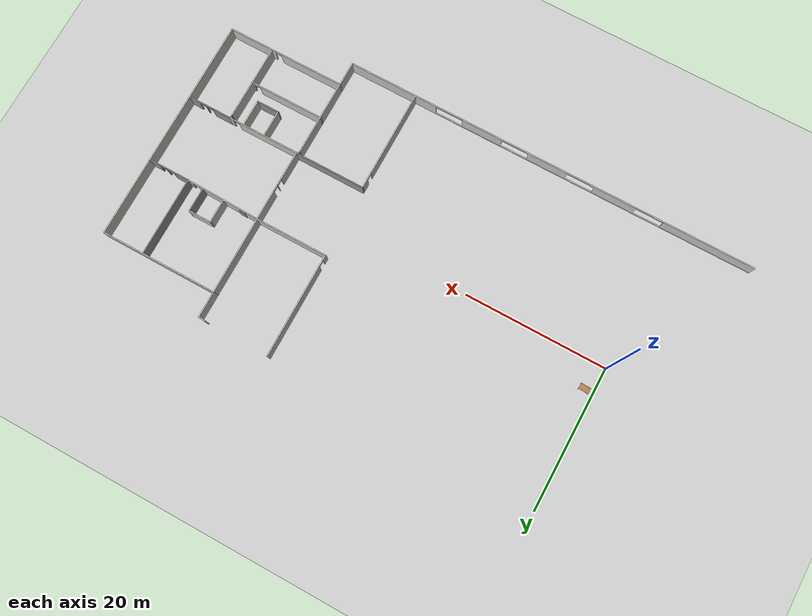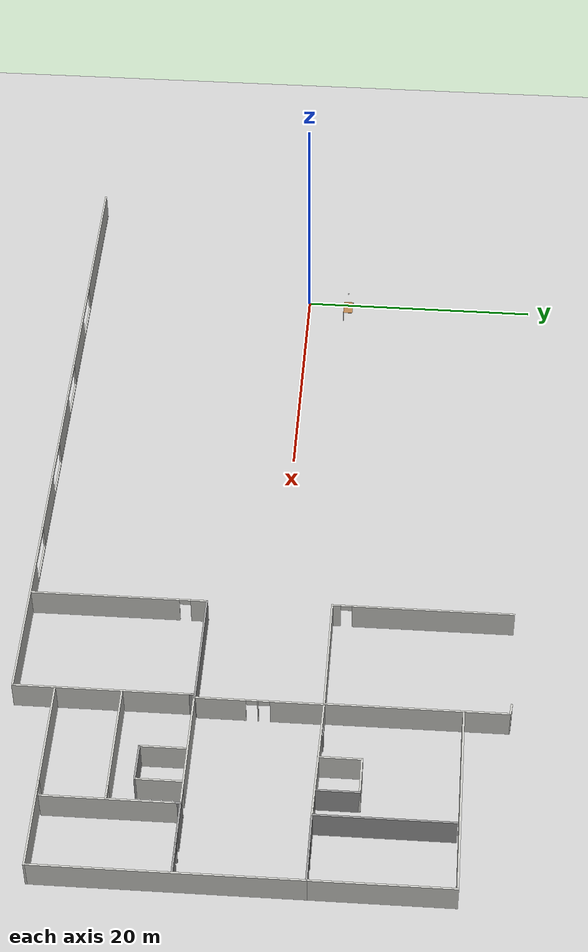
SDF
<sdf version="1.6">
 <world name="default">
  <model name="ground_plane">
   <static>1</static>
   <link name="link">
    <collision name="collision">
     <geometry><plane><normal>0 0 1</normal><size>100 100</size></plane></geometry>
     <surface><friction><ode><mu>100</mu><mu2>50</mu2></ode></friction></surface>
    </collision>
    <visual name="visual">
     <cast_shadows>0</cast_shadows>
     <geometry><plane><normal>0 0 1</normal><size>100 100</size></plane></geometry>
     <material>
      <script><uri>file://media/materials/scripts/gazebo.material</uri><name>Gazebo/Grey</name></script>
     </material>
    </visual>
   </link>
  </model>
  <model name="Erdgeschossen_labor">
   <pose>-4.29246 -0.487524 0 0 -0 0</pose>
   <link name="Door_37">
    <collision name="Door_37_Collision">
     <geometry><box><size>0.9 0.17 2</size></box></geometry>
     <pose>0 0 1 0 -0 0</pose>
    </collision>
    <visual name="Door_37_Visual">
     <pose>0 0 1 0 -0 0</pose>
     <geometry><box><size>0.9 0.17 2</size></box></geometry>
     <material>
      <script><uri>file://media/materials/scripts/gazebo.material</uri><name>Gazebo/Grey</name></script>
     </material>
    </visual>
    <pose>54.7211 4.95557 0 0 -0 0</pose>
   </link>
   <link name="Wall_10">
    <pose>65.825 4.6812 0 0 -0 3.14159</pose>
    <visual name="Wall_10_Visual_0">
     <pose>-2.15466 0 1.25 0 -0 0</pose>
     <geometry><box><size>1.69069 0.15 2.5</size></box></geometry>
     <material>
      <script><uri>file://media/materials/scripts/gazebo.material</uri><name>Gazebo/Grey</name></script>
      <ambient>1 1 1 1</ambient>
     </material>
    </visual>
    <collision name="Wall_10_Collision_0">
     <geometry><box><size>1.69069 0.15 2.5</size></box></geometry>
     <pose>-2.15466 0 1.25 0 -0 0</pose>
    </collision>
    <visual name="Wall_10_Visual_1">
     <pose>-0.324451 0 1.25 0 -0 0</pose>
     <geometry><box><size>0.169725 0.15 2.5</size></box></geometry>
     <material>
      <script><uri>file://media/materials/scripts/gazebo.material</uri><name>Gazebo/Grey</name></script>
      <ambient>1 1 1 1</ambient>
     </material>
    </visual>
    <collision name="Wall_10_Collision_1">
     <geometry><box><size>0.169725 0.15 2.5</size></box></geometry>
     <pose>-0.324451 0 1.25 0 -0 0</pose>
    </collision>
    <visual name="Wall_10_Visual_2">
     <pose>1.83021 0 1.25 0 -0 0</pose>
     <geometry><box><size>2.33959 0.15 2.5</size></box></geometry>
     <material>
      <script><uri>file://media/materials/scripts/gazebo.material</uri><name>Gazebo/Grey</name></script>
      <ambient>1 1 1 1</ambient>
     </material>
    </visual>
    <collision name="Wall_10_Collision_2">
     <geometry><box><size>2.33959 0.15 2.5</size></box></geometry>
     <pose>1.83021 0 1.25 0 -0 0</pose>
    </collision>
    <visual name="Wall_10_Visual_3">
     <pose>-0.859314 0 2.25 0 -0 0</pose>
     <geometry><box><size>0.9 0.15 0.5</size></box></geometry>
     <material>
      <script><uri>file://media/materials/scripts/gazebo.material</uri><name>Gazebo/Grey</name></script>
      <ambient>1 1 1 1</ambient>
     </material>
    </visual>
    <collision name="Wall_10_Collision_3">
     <geometry><box><size>0.9 0.15 0.5</size></box></geometry>
     <pose>-0.859314 0 2.25 0 -0 0</pose>
    </collision>
    <visual name="Wall_10_Visual_4">
     <pose>0.210411 0 2.25 0 -0 0</pose>
     <geometry><box><size>0.9 0.15 0.5</size></box></geometry>
     <material>
      <script><uri>file://media/materials/scripts/gazebo.material</uri><name>Gazebo/Grey</name></script>
      <ambient>1 1 1 1</ambient>
     </material>
    </visual>
    <collision name="Wall_10_Collision_4">
     <geometry><box><size>0.9 0.15 0.5</size></box></geometry>
     <pose>0.210411 0 2.25 0 -0 0</pose>
    </collision>
   </link>
   <link name="Wall_11">
    <collision name="Wall_11_Collision">
     <geometry><box><size>11 0.15 2.5</size></box></geometry>
     <pose>0 0 1.25 0 -0 0</pose>
    </collision>
    <visual name="Wall_11_Visual">
     <pose>0 0 1.25 0 -0 0</pose>
     <geometry><box><size>11 0.15 2.5</size></box></geometry>
     <material>
      <script><uri>file://media/materials/scripts/gazebo.material</uri><name>Gazebo/Grey</name></script>
      <ambient>1 1 1 1</ambient>
     </material>
    </visual>
    <pose>62.9 10.1062 0 0 -0 1.5708</pose>
   </link>
   <link name="Wall_13">
    <collision name="Wall_13_Collision">
     <geometry><box><size>1.04169 0.15 2.5</size></box></geometry>
     <pose>0 0 1.25 0 -0 0</pose>
    </collision>
    <visual name="Wall_13_Visual">
     <pose>0 0 1.25 0 -0 0</pose>
     <geometry><box><size>1.04169 0.15 2.5</size></box></geometry>
     <material>
      <script><uri>file://media/materials/scripts/gazebo.material</uri><name>Gazebo/CeilingTiled</name></script>
      <ambient>1 1 1 1</ambient>
     </material>
    </visual>
    <pose>51.956 19.4215 0 0 -0 3.05118</pose>
   </link>
   <link name="Wall_15">
    <collision name="Wall_15_Collision">
     <geometry><box><size>11 0.15 2.5</size></box></geometry>
     <pose>0 0 1.25 0 -0 0</pose>
    </collision>
    <visual name="Wall_15_Visual">
     <pose>0 0 1.25 0 -0 0</pose>
     <geometry><box><size>11 0.15 2.5</size></box></geometry>
     <material>
      <script><uri>file://media/materials/scripts/gazebo.material</uri><name>Gazebo/CeilingTiled</name></script>
      <ambient>1 1 1 1</ambient>
     </material>
    </visual>
    <pose>52.4 10.3562 0 0 0 -1.5708</pose>
   </link>
   <link name="Wall_16">
    <pose>57.65 4.8062 0 0 0 -0.023805</pose>
    <visual name="Wall_16_Visual_0">
     <pose>-0.791437 0 1.25 0 -0 0</pose>
     <geometry><box><size>9.0701 0.15 2.5</size></box></geometry>
     <material>
      <script><uri>file://media/materials/scripts/gazebo.material</uri><name>Gazebo/CeilingTiled</name></script>
      <ambient>1 1 1 1</ambient>
     </material>
    </visual>
    <collision name="Wall_16_Collision_0">
     <geometry><box><size>9.0701 0.15 2.5</size></box></geometry>
     <pose>-0.791437 0 1.25 0 -0 0</pose>
    </collision>
    <visual name="Wall_16_Visual_1">
     <pose>4.98505 0 1.25 0 -0 0</pose>
     <geometry><box><size>0.682875 0.15 2.5</size></box></geometry>
     <material>
      <script><uri>file://media/materials/scripts/gazebo.material</uri><name>Gazebo/CeilingTiled</name></script>
      <ambient>1 1 1 1</ambient>
     </material>
    </visual>
    <collision name="Wall_16_Collision_1">
     <geometry><box><size>0.682875 0.15 2.5</size></box></geometry>
     <pose>4.98505 0 1.25 0 -0 0</pose>
    </collision>
    <visual name="Wall_16_Visual_2">
     <pose>4.19361 0 2.25 0 -0 0</pose>
     <geometry><box><size>0.9 0.15 0.5</size></box></geometry>
     <material>
      <script><uri>file://media/materials/scripts/gazebo.material</uri><name>Gazebo/CeilingTiled</name></script>
      <ambient>1 1 1 1</ambient>
     </material>
    </visual>
    <collision name="Wall_16_Collision_2">
     <geometry><box><size>0.9 0.15 0.5</size></box></geometry>
     <pose>4.19361 0 2.25 0 -0 0</pose>
    </collision>
   </link>
   <link name="Wall_18">
    <collision name="Wall_18_Collision">
     <geometry><box><size>21 0.15 2.5</size></box></geometry>
     <pose>0 0 1.25 0 -0 0</pose>
    </collision>
    <visual name="Wall_18_Visual">
     <pose>0 0 1.25 0 -0 0</pose>
     <geometry><box><size>21 0.15 2.5</size></box></geometry>
     <material>
      <script><uri>file://media/materials/scripts/gazebo.material</uri><name>Gazebo/CeilingTiled</name></script>
      <ambient>1 1 1 1</ambient>
     </material>
    </visual>
    <pose>68.75 -5.7438 0 0 0 -1.5708</pose>
   </link>
   <link name="Wall_19">
    <pose>60.45 -16.1688 0 0 -0 3.14159</pose>
    <visual name="Wall_19_Visual_0">
     <pose>-4.96727 0 1.25 0 -0 0</pose>
     <geometry><box><size>6.81547 0.15 2.5</size></box></geometry>
     <material>
      <script><uri>file://media/materials/scripts/gazebo.material</uri><name>Gazebo/CeilingTiled</name></script>
      <ambient>1 1 1 1</ambient>
     </material>
    </visual>
    <collision name="Wall_19_Collision_0">
     <geometry><box><size>6.81547 0.15 2.5</size></box></geometry>
     <pose>-4.96727 0 1.25 0 -0 0</pose>
    </collision>
    <visual name="Wall_19_Visual_1">
     <pose>3.85773 0 1.25 0 -0 0</pose>
     <geometry><box><size>9.03453 0.15 2.5</size></box></geometry>
     <material>
      <script><uri>file://media/materials/scripts/gazebo.material</uri><name>Gazebo/CeilingTiled</name></script>
      <ambient>1 1 1 1</ambient>
     </material>
    </visual>
    <collision name="Wall_19_Collision_1">
     <geometry><box><size>9.03453 0.15 2.5</size></box></geometry>
     <pose>3.85773 0 1.25 0 -0 0</pose>
    </collision>
    <visual name="Wall_19_Visual_2">
     <pose>-1.10953 0 2.25 0 -0 0</pose>
     <geometry><box><size>0.9 0.15 0.5</size></box></geometry>
     <material>
      <script><uri>file://media/materials/scripts/gazebo.material</uri><name>Gazebo/CeilingTiled</name></script>
      <ambient>1 1 1 1</ambient>
     </material>
    </visual>
    <collision name="Wall_19_Collision_2">
     <geometry><box><size>0.9 0.15 0.5</size></box></geometry>
     <pose>-1.10953 0 2.25 0 -0 0</pose>
    </collision>
   </link>
   <link name="Wall_20">
    <collision name="Wall_20_Collision">
     <geometry><box><size>10.75 0.15 2.5</size></box></geometry>
     <pose>0 0 1.25 0 -0 0</pose>
    </collision>
    <visual name="Wall_20_Visual">
     <pose>0 0 1.25 0 -0 0</pose>
     <geometry><box><size>10.75 0.15 2.5</size></box></geometry>
     <material>
      <script><uri>file://media/materials/scripts/gazebo.material</uri><name>Gazebo/CeilingTiled</name></script>
      <ambient>1 1 1 1</ambient>
     </material>
    </visual>
    <pose>52.15 -10.8688 0 0 -0 1.5708</pose>
   </link>
   <link name="Wall_22">
    <collision name="Wall_22_Collision">
     <geometry><box><size>10.5 0.15 2.5</size></box></geometry>
     <pose>0 0 1.25 0 -0 0</pose>
    </collision>
    <visual name="Wall_22_Visual">
     <pose>0 0 1.25 0 -0 0</pose>
     <geometry><box><size>10.5 0.15 2.5</size></box></geometry>
     <material>
      <script><uri>file://media/materials/scripts/gazebo.material</uri><name>Gazebo/CeilingTiled</name></script>
      <ambient>1 1 1 1</ambient>
     </material>
    </visual>
    <pose>62.5 -10.7438 0 0 0 -1.5708</pose>
   </link>
   <link name="Wall_25">
    <collision name="Wall_25_Collision">
     <geometry><box><size>0.5 0.15 2.5</size></box></geometry>
     <pose>0 0 1.25 0 -0 0</pose>
    </collision>
    <visual name="Wall_25_Visual">
     <pose>0 0 1.25 0 -0 0</pose>
     <geometry><box><size>0.5 0.15 2.5</size></box></geometry>
     <material>
      <script><uri>file://media/materials/scripts/gazebo.material</uri><name>Gazebo/Grey</name></script>
      <ambient>1 1 1 1</ambient>
     </material>
    </visual>
    <pose>52.15 -5.3938 0 0 -0 1.5708</pose>
   </link>
   <link name="Wall_26">
    <pose>57.325 -5.2188 0 0 -0 0</pose>
    <visual name="Wall_26_Visual_0">
     <pose>-0.710538 0 1.25 0 -0 0</pose>
     <geometry><box><size>9.07892 0.15 2.5</size></box></geometry>
     <material>
      <script><uri>file://media/materials/scripts/gazebo.material</uri><name>Gazebo/CeilingTiled</name></script>
      <ambient>1 1 1 1</ambient>
     </material>
    </visual>
    <collision name="Wall_26_Collision_0">
     <geometry><box><size>9.07892 0.15 2.5</size></box></geometry>
     <pose>-0.710538 0 1.25 0 -0 0</pose>
    </collision>
    <visual name="Wall_26_Visual_1">
     <pose>4.98946 0 1.25 0 -0 0</pose>
     <geometry><box><size>0.521077 0.15 2.5</size></box></geometry>
     <material>
      <script><uri>file://media/materials/scripts/gazebo.material</uri><name>Gazebo/CeilingTiled</name></script>
      <ambient>1 1 1 1</ambient>
     </material>
    </visual>
    <collision name="Wall_26_Collision_1">
     <geometry><box><size>0.521077 0.15 2.5</size></box></geometry>
     <pose>4.98946 0 1.25 0 -0 0</pose>
    </collision>
    <visual name="Wall_26_Visual_2">
     <pose>4.27892 0 2.25 0 -0 0</pose>
     <geometry><box><size>0.9 0.15 0.5</size></box></geometry>
     <material>
      <script><uri>file://media/materials/scripts/gazebo.material</uri><name>Gazebo/CeilingTiled</name></script>
      <ambient>1 1 1 1</ambient>
     </material>
    </visual>
    <collision name="Wall_26_Collision_2">
     <geometry><box><size>0.9 0.15 0.5</size></box></geometry>
     <pose>4.27892 0 2.25 0 -0 0</pose>
    </collision>
   </link>
   <link name="Wall_27">
    <collision name="Wall_27_Collision">
     <geometry><box><size>0.5 0.15 2.5</size></box></geometry>
     <pose>0 0 1.25 0 -0 0</pose>
    </collision>
    <visual name="Wall_27_Visual">
     <pose>0 0 1.25 0 -0 0</pose>
     <geometry><box><size>0.5 0.15 2.5</size></box></geometry>
     <material>
      <script><uri>file://media/materials/scripts/gazebo.material</uri><name>Gazebo/Grey</name></script>
      <ambient>1 1 1 1</ambient>
     </material>
    </visual>
    <pose>62.5 -5.3938 0 0 0 -1.5708</pose>
   </link>
   <link name="Wall_29">
    <pose>65.55 -5.2188 0 0 -0 0</pose>
    <visual name="Wall_29_Visual_0">
     <pose>-1.74988 0 1.25 0 -0 0</pose>
     <geometry><box><size>2.75023 0.15 2.5</size></box></geometry>
     <material>
      <script><uri>file://media/materials/scripts/gazebo.material</uri><name>Gazebo/Grey</name></script>
      <ambient>1 1 1 1</ambient>
     </material>
    </visual>
    <collision name="Wall_29_Collision_0">
     <geometry><box><size>2.75023 0.15 2.5</size></box></geometry>
     <pose>-1.74988 0 1.25 0 -0 0</pose>
    </collision>
    <visual name="Wall_29_Visual_1">
     <pose>0.607143 0 1.25 0 -0 0</pose>
     <geometry><box><size>0.16382 0.15 2.5</size></box></geometry>
     <material>
      <script><uri>file://media/materials/scripts/gazebo.material</uri><name>Gazebo/Grey</name></script>
      <ambient>1 1 1 1</ambient>
     </material>
    </visual>
    <collision name="Wall_29_Collision_1">
     <geometry><box><size>0.16382 0.15 2.5</size></box></geometry>
     <pose>0.607143 0 1.25 0 -0 0</pose>
    </collision>
    <visual name="Wall_29_Visual_2">
     <pose>2.35703 0 1.25 0 -0 0</pose>
     <geometry><box><size>1.53595 0.15 2.5</size></box></geometry>
     <material>
      <script><uri>file://media/materials/scripts/gazebo.material</uri><name>Gazebo/Grey</name></script>
      <ambient>1 1 1 1</ambient>
     </material>
    </visual>
    <collision name="Wall_29_Collision_2">
     <geometry><box><size>1.53595 0.15 2.5</size></box></geometry>
     <pose>2.35703 0 1.25 0 -0 0</pose>
    </collision>
    <visual name="Wall_29_Visual_3">
     <pose>0.075233 0 2.25 0 -0 0</pose>
     <geometry><box><size>0.9 0.15 0.5</size></box></geometry>
     <material>
      <script><uri>file://media/materials/scripts/gazebo.material</uri><name>Gazebo/Grey</name></script>
      <ambient>1 1 1 1</ambient>
     </material>
    </visual>
    <collision name="Wall_29_Collision_3">
     <geometry><box><size>0.9 0.15 0.5</size></box></geometry>
     <pose>0.075233 0 2.25 0 -0 0</pose>
    </collision>
    <visual name="Wall_29_Visual_4">
     <pose>1.13905 0 2.25 0 -0 0</pose>
     <geometry><box><size>0.9 0.15 0.5</size></box></geometry>
     <material>
      <script><uri>file://media/materials/scripts/gazebo.material</uri><name>Gazebo/Grey</name></script>
      <ambient>1 1 1 1</ambient>
     </material>
    </visual>
    <collision name="Wall_29_Collision_4">
     <geometry><box><size>0.9 0.15 0.5</size></box></geometry>
     <pose>1.13905 0 2.25 0 -0 0</pose>
    </collision>
   </link>
   <link name="Wall_31">
    <collision name="Wall_31_Collision">
     <geometry><box><size>3.5 0.15 2.5</size></box></geometry>
     <pose>0 0 1.25 0 -0 0</pose>
    </collision>
    <visual name="Wall_31_Visual">
     <pose>0 0 1.25 0 -0 0</pose>
     <geometry><box><size>3.5 0.15 2.5</size></box></geometry>
     <material>
      <script><uri>file://media/materials/scripts/gazebo.material</uri><name>Gazebo/CeilingTiled</name></script>
      <ambient>1 1 1 1</ambient>
     </material>
    </visual>
    <pose>52.15 -17.8438 0 0 0 -1.5708</pose>
   </link>
   <link name="Wall_32">
    <pose>22.85 -19.5188 0 0 -0 3.14159</pose>
    <visual name="Wall_32_Visual_0">
     <pose>-22.984 0 1.25 0 -0 0</pose>
     <geometry><box><size>12.7819 0.15 2.5</size></box></geometry>
     <material>
      <script><uri>file://media/materials/scripts/gazebo.material</uri><name>Gazebo/CeilingTiled</name></script>
      <ambient>1 1 1 1</ambient>
     </material>
    </visual>
    <collision name="Wall_32_Collision_0">
     <geometry><box><size>12.7819 0.15 2.5</size></box></geometry>
     <pose>-22.984 0 1.25 0 -0 0</pose>
    </collision>
    <visual name="Wall_32_Visual_1">
     <pose>6.39096 0 0.1 0 -0 0</pose>
     <geometry><box><size>45.9681 0.15 0.2</size></box></geometry>
     <material>
      <script><uri>file://media/materials/scripts/gazebo.material</uri><name>Gazebo/CeilingTiled</name></script>
      <ambient>1 1 1 1</ambient>
     </material>
    </visual>
    <collision name="Wall_32_Collision_1">
     <geometry><box><size>45.9681 0.15 0.2</size></box></geometry>
     <pose>6.39096 0 0.1 0 -0 0</pose>
    </collision>
    <visual name="Wall_32_Visual_2">
     <pose>-9.79822 0 1.35 0 -0 0</pose>
     <geometry><box><size>5.82974 0.15 2.3</size></box></geometry>
     <material>
      <script><uri>file://media/materials/scripts/gazebo.material</uri><name>Gazebo/CeilingTiled</name></script>
      <ambient>1 1 1 1</ambient>
     </material>
    </visual>
    <collision name="Wall_32_Collision_2">
     <geometry><box><size>5.82974 0.15 2.3</size></box></geometry>
     <pose>-9.79822 0 1.35 0 -0 0</pose>
    </collision>
    <visual name="Wall_32_Visual_3">
     <pose>-0.149557 0 1.35 0 -0 0</pose>
     <geometry><box><size>5.70758 0.15 2.3</size></box></geometry>
     <material>
      <script><uri>file://media/materials/scripts/gazebo.material</uri><name>Gazebo/CeilingTiled</name></script>
      <ambient>1 1 1 1</ambient>
     </material>
    </visual>
    <collision name="Wall_32_Collision_3">
     <geometry><box><size>5.70758 0.15 2.3</size></box></geometry>
     <pose>-0.149557 0 1.35 0 -0 0</pose>
    </collision>
    <visual name="Wall_32_Visual_4">
     <pose>9.60231 0 1.35 0 -0 0</pose>
     <geometry><box><size>6.03615 0.15 2.3</size></box></geometry>
     <material>
      <script><uri>file://media/materials/scripts/gazebo.material</uri><name>Gazebo/CeilingTiled</name></script>
      <ambient>1 1 1 1</ambient>
     </material>
    </visual>
    <collision name="Wall_32_Collision_4">
     <geometry><box><size>6.03615 0.15 2.3</size></box></geometry>
     <pose>9.60231 0 1.35 0 -0 0</pose>
    </collision>
    <visual name="Wall_32_Visual_5">
     <pose>22.9377 0 1.35 0 -0 0</pose>
     <geometry><box><size>12.8746 0.15 2.3</size></box></geometry>
     <material>
      <script><uri>file://media/materials/scripts/gazebo.material</uri><name>Gazebo/CeilingTiled</name></script>
      <ambient>1 1 1 1</ambient>
     </material>
    </visual>
    <collision name="Wall_32_Collision_5">
     <geometry><box><size>12.8746 0.15 2.3</size></box></geometry>
     <pose>22.9377 0 1.35 0 -0 0</pose>
    </collision>
    <visual name="Wall_32_Visual_6">
     <pose>-14.6531 0 2.35 0 -0 0</pose>
     <geometry><box><size>3.88 0.15 0.3</size></box></geometry>
     <material>
      <script><uri>file://media/materials/scripts/gazebo.material</uri><name>Gazebo/CeilingTiled</name></script>
      <ambient>1 1 1 1</ambient>
     </material>
    </visual>
    <collision name="Wall_32_Collision_6">
     <geometry><box><size>3.88 0.15 0.3</size></box></geometry>
     <pose>-14.6531 0 2.35 0 -0 0</pose>
    </collision>
    <visual name="Wall_32_Visual_7">
     <pose>-4.94335 0 2.35 0 -0 0</pose>
     <geometry><box><size>3.88 0.15 0.3</size></box></geometry>
     <material>
      <script><uri>file://media/materials/scripts/gazebo.material</uri><name>Gazebo/CeilingTiled</name></script>
      <ambient>1 1 1 1</ambient>
     </material>
    </visual>
    <collision name="Wall_32_Collision_7">
     <geometry><box><size>3.88 0.15 0.3</size></box></geometry>
     <pose>-4.94335 0 2.35 0 -0 0</pose>
    </collision>
    <visual name="Wall_32_Visual_8">
     <pose>4.64423 0 2.35 0 -0 0</pose>
     <geometry><box><size>3.88 0.15 0.3</size></box></geometry>
     <material>
      <script><uri>file://media/materials/scripts/gazebo.material</uri><name>Gazebo/CeilingTiled</name></script>
      <ambient>1 1 1 1</ambient>
     </material>
    </visual>
    <collision name="Wall_32_Collision_8">
     <geometry><box><size>3.88 0.15 0.3</size></box></geometry>
     <pose>4.64423 0 2.35 0 -0 0</pose>
    </collision>
    <visual name="Wall_32_Visual_9">
     <pose>14.5604 0 2.35 0 -0 0</pose>
     <geometry><box><size>3.88 0.15 0.3</size></box></geometry>
     <material>
      <script><uri>file://media/materials/scripts/gazebo.material</uri><name>Gazebo/CeilingTiled</name></script>
      <ambient>1 1 1 1</ambient>
     </material>
    </visual>
    <collision name="Wall_32_Collision_9">
     <geometry><box><size>3.88 0.15 0.3</size></box></geometry>
     <pose>14.5604 0 2.35 0 -0 0</pose>
    </collision>
   </link>
   <link name="Wall_56">
    <pose>42.3375 12.225 0 0 0 -1.5708</pose>
    <visual name="Wall_56_Visual_0">
     <pose>-0.833294 0 1.25 0 -0 0</pose>
     <geometry><box><size>13.0834 0.15 2.5</size></box></geometry>
     <material>
      <script><uri>file://media/materials/scripts/gazebo.material</uri><name>Gazebo/CeilingTiled</name></script>
      <ambient>1 1 1 1</ambient>
     </material>
    </visual>
    <collision name="Wall_56_Collision_0">
     <geometry><box><size>13.0834 0.15 2.5</size></box></geometry>
     <pose>-0.833294 0 1.25 0 -0 0</pose>
    </collision>
    <visual name="Wall_56_Visual_1">
     <pose>6.99171 0 1.25 0 -0 0</pose>
     <geometry><box><size>0.766588 0.15 2.5</size></box></geometry>
     <material>
      <script><uri>file://media/materials/scripts/gazebo.material</uri><name>Gazebo/CeilingTiled</name></script>
      <ambient>1 1 1 1</ambient>
     </material>
    </visual>
    <collision name="Wall_56_Collision_1">
     <geometry><box><size>0.766588 0.15 2.5</size></box></geometry>
     <pose>6.99171 0 1.25 0 -0 0</pose>
    </collision>
    <visual name="Wall_56_Visual_2">
     <pose>6.15841 0 2.25 0 -0 0</pose>
     <geometry><box><size>0.9 0.15 0.5</size></box></geometry>
     <material>
      <script><uri>file://media/materials/scripts/gazebo.material</uri><name>Gazebo/CeilingTiled</name></script>
      <ambient>1 1 1 1</ambient>
     </material>
    </visual>
    <collision name="Wall_56_Collision_2">
     <geometry><box><size>0.9 0.15 0.5</size></box></geometry>
     <pose>6.15841 0 2.25 0 -0 0</pose>
    </collision>
   </link>
   <link name="Wall_57">
    <collision name="Wall_57_Collision">
     <geometry><box><size>10.25 0.15 2.5</size></box></geometry>
     <pose>0 0 1.25 0 -0 0</pose>
    </collision>
    <visual name="Wall_57_Visual">
     <pose>0 0 1.25 0 -0 0</pose>
     <geometry><box><size>10.25 0.15 2.5</size></box></geometry>
     <material>
      <script><uri>file://media/materials/scripts/gazebo.material</uri><name>Gazebo/CeilingTiled</name></script>
      <ambient>1 1 1 1</ambient>
     </material>
    </visual>
    <pose>47.3875 4.925 0 0 -0 0</pose>
   </link>
   <link name="Wall_58">
    <pose>52.4375 -0.125 0 0 0 -1.5708</pose>
    <visual name="Wall_58_Visual_0">
     <pose>-2.97823 0 1.25 0 -0 0</pose>
     <geometry><box><size>4.29353 0.15 2.5</size></box></geometry>
     <material>
      <script><uri>file://media/materials/scripts/gazebo.material</uri><name>Gazebo/CeilingTiled</name></script>
      <ambient>1 1 1 1</ambient>
     </material>
    </visual>
    <collision name="Wall_58_Collision_0">
     <geometry><box><size>4.29353 0.15 2.5</size></box></geometry>
     <pose>-2.97823 0 1.25 0 -0 0</pose>
    </collision>
    <visual name="Wall_58_Visual_1">
     <pose>0.109528 0 1.25 0 -0 0</pose>
     <geometry><box><size>0.081992 0.15 2.5</size></box></geometry>
     <material>
      <script><uri>file://media/materials/scripts/gazebo.material</uri><name>Gazebo/CeilingTiled</name></script>
      <ambient>1 1 1 1</ambient>
     </material>
    </visual>
    <collision name="Wall_58_Collision_1">
     <geometry><box><size>0.081992 0.15 2.5</size></box></geometry>
     <pose>0.109528 0 1.25 0 -0 0</pose>
    </collision>
    <visual name="Wall_58_Visual_2">
     <pose>3.08776 0 1.25 0 -0 0</pose>
     <geometry><box><size>4.07447 0.15 2.5</size></box></geometry>
     <material>
      <script><uri>file://media/materials/scripts/gazebo.material</uri><name>Gazebo/CeilingTiled</name></script>
      <ambient>1 1 1 1</ambient>
     </material>
    </visual>
    <collision name="Wall_58_Collision_2">
     <geometry><box><size>4.07447 0.15 2.5</size></box></geometry>
     <pose>3.08776 0 1.25 0 -0 0</pose>
    </collision>
    <visual name="Wall_58_Visual_3">
     <pose>-0.381468 0 2.25 0 -0 0</pose>
     <geometry><box><size>0.9 0.15 0.5</size></box></geometry>
     <material>
      <script><uri>file://media/materials/scripts/gazebo.material</uri><name>Gazebo/CeilingTiled</name></script>
      <ambient>1 1 1 1</ambient>
     </material>
    </visual>
    <collision name="Wall_58_Collision_3">
     <geometry><box><size>0.9 0.15 0.5</size></box></geometry>
     <pose>-0.381468 0 2.25 0 -0 0</pose>
    </collision>
    <visual name="Wall_58_Visual_4">
     <pose>0.600525 0 2.25 0 -0 0</pose>
     <geometry><box><size>0.9 0.15 0.5</size></box></geometry>
     <material>
      <script><uri>file://media/materials/scripts/gazebo.material</uri><name>Gazebo/CeilingTiled</name></script>
      <ambient>1 1 1 1</ambient>
     </material>
    </visual>
    <collision name="Wall_58_Collision_4">
     <geometry><box><size>0.9 0.15 0.5</size></box></geometry>
     <pose>0.600525 0 2.25 0 -0 0</pose>
    </collision>
   </link>
   <link name="Wall_59">
    <collision name="Wall_59_Collision">
     <geometry><box><size>10 0.15 2.5</size></box></geometry>
     <pose>0 0 1.25 0 -0 0</pose>
    </collision>
    <visual name="Wall_59_Visual">
     <pose>0 0 1.25 0 -0 0</pose>
     <geometry><box><size>10 0.15 2.5</size></box></geometry>
     <material>
      <script><uri>file://media/materials/scripts/gazebo.material</uri><name>Gazebo/Grey</name></script>
      <ambient>1 1 1 1</ambient>
     </material>
    </visual>
    <pose>47.5125 -5.175 0 0 -0 3.14159</pose>
   </link>
   <link name="Wall_60">
    <pose>42.5875 -12.35 0 0 0 -1.5708</pose>
    <visual name="Wall_60_Visual_0">
     <pose>-6.5526 0 1.25 0 -0 0</pose>
     <geometry><box><size>1.39481 0.15 2.5</size></box></geometry>
     <material>
      <script><uri>file://media/materials/scripts/gazebo.material</uri><name>Gazebo/CeilingTiled</name></script>
      <ambient>1 1 1 1</ambient>
     </material>
    </visual>
    <collision name="Wall_60_Collision_0">
     <geometry><box><size>1.39481 0.15 2.5</size></box></geometry>
     <pose>-6.5526 0 1.25 0 -0 0</pose>
    </collision>
    <visual name="Wall_60_Visual_1">
     <pose>1.14741 0 1.25 0 -0 0</pose>
     <geometry><box><size>12.2052 0.15 2.5</size></box></geometry>
     <material>
      <script><uri>file://media/materials/scripts/gazebo.material</uri><name>Gazebo/CeilingTiled</name></script>
      <ambient>1 1 1 1</ambient>
     </material>
    </visual>
    <collision name="Wall_60_Collision_1">
     <geometry><box><size>12.2052 0.15 2.5</size></box></geometry>
     <pose>1.14741 0 1.25 0 -0 0</pose>
    </collision>
    <visual name="Wall_60_Visual_2">
     <pose>-5.40519 0 2.25 0 -0 0</pose>
     <geometry><box><size>0.9 0.15 0.5</size></box></geometry>
     <material>
      <script><uri>file://media/materials/scripts/gazebo.material</uri><name>Gazebo/CeilingTiled</name></script>
      <ambient>1 1 1 1</ambient>
     </material>
    </visual>
    <collision name="Wall_60_Collision_2">
     <geometry><box><size>0.9 0.15 0.5</size></box></geometry>
     <pose>-5.40519 0 2.25 0 -0 0</pose>
    </collision>
   </link>
   <link name="Wall_7">
    <collision name="Wall_7_Collision">
     <geometry><box><size>3.75 0.15 2.5</size></box></geometry>
     <pose>0 0 1.25 0 -0 0</pose>
    </collision>
    <visual name="Wall_7_Visual">
     <pose>0 0 1.25 0 -0 0</pose>
     <geometry><box><size>3.75 0.15 2.5</size></box></geometry>
     <material>
      <script><uri>file://media/materials/scripts/gazebo.material</uri><name>Gazebo/CeilingTiled</name></script>
      <ambient>1 1 1 1</ambient>
     </material>
    </visual>
    <pose>52.4 17.5812 0 0 0 -1.5708</pose>
   </link>
   <link name="Wall_73">
    <collision name="Wall_73_Collision">
     <geometry><box><size>3.75 0.15 2.5</size></box></geometry>
     <pose>0 0 1.25 0 -0 0</pose>
    </collision>
    <visual name="Wall_73_Visual">
     <pose>0 0 1.25 0 -0 0</pose>
     <geometry><box><size>3.75 0.15 2.5</size></box></geometry>
     <material>
      <script><uri>file://media/materials/scripts/gazebo.material</uri><name>Gazebo/CeilingTiled</name></script>
      <ambient>1 1 1 1</ambient>
     </material>
    </visual>
    <pose>60.4938 -7.1291 0 0 0 -1.5708</pose>
   </link>
   <link name="Wall_78">
    <collision name="Wall_78_Collision">
     <geometry><box><size>3.25 0.15 2.5</size></box></geometry>
     <pose>0 0 1.25 0 -0 0</pose>
    </collision>
    <visual name="Wall_78_Visual">
     <pose>0 0 1.25 0 -0 0</pose>
     <geometry><box><size>3.25 0.15 2.5</size></box></geometry>
     <material>
      <script><uri>file://media/materials/scripts/gazebo.material</uri><name>Gazebo/Grey</name></script>
      <ambient>1 1 1 1</ambient>
     </material>
    </visual>
    <pose>58.9438 -8.9291 0 0 -0 3.14159</pose>
   </link>
   <link name="Wall_79">
    <collision name="Wall_79_Collision">
     <geometry><box><size>3.75 0.15 2.5</size></box></geometry>
     <pose>0 0 1.25 0 -0 0</pose>
    </collision>
    <visual name="Wall_79_Visual">
     <pose>0 0 1.25 0 -0 0</pose>
     <geometry><box><size>3.75 0.15 2.5</size></box></geometry>
     <material>
      <script><uri>file://media/materials/scripts/gazebo.material</uri><name>Gazebo/CeilingTiled</name></script>
      <ambient>1 1 1 1</ambient>
     </material>
    </visual>
    <pose>57.3938 -7.1291 0 0 -0 1.5708</pose>
   </link>
   <link name="Wall_8">
    <collision name="Wall_8_Collision">
     <geometry><box><size>16.5 0.15 2.5</size></box></geometry>
     <pose>0 0 1.25 0 -0 0</pose>
    </collision>
    <visual name="Wall_8_Visual">
     <pose>0 0 1.25 0 -0 0</pose>
     <geometry><box><size>16.5 0.15 2.5</size></box></geometry>
     <material>
      <script><uri>file://media/materials/scripts/gazebo.material</uri><name>Gazebo/CeilingTiled</name></script>
      <ambient>1 1 1 1</ambient>
     </material>
    </visual>
    <pose>60.575 15.7812 0 0 -0 0</pose>
   </link>
   <link name="Wall_81">
    <pose>57.2861 -10.8951 0 0 -0 0</pose>
    <visual name="Wall_81_Visual_0">
     <pose>-0.621835 0 1.25 0 -0 0</pose>
     <geometry><box><size>9.25633 0.15 2.5</size></box></geometry>
     <material>
      <script><uri>file://media/materials/scripts/gazebo.material</uri><name>Gazebo/CeilingTiled</name></script>
      <ambient>1 1 1 1</ambient>
     </material>
    </visual>
    <collision name="Wall_81_Collision_0">
     <geometry><box><size>9.25633 0.15 2.5</size></box></geometry>
     <pose>-0.621835 0 1.25 0 -0 0</pose>
    </collision>
    <visual name="Wall_81_Visual_1">
     <pose>5.07817 0 1.25 0 -0 0</pose>
     <geometry><box><size>0.343671 0.15 2.5</size></box></geometry>
     <material>
      <script><uri>file://media/materials/scripts/gazebo.material</uri><name>Gazebo/CeilingTiled</name></script>
      <ambient>1 1 1 1</ambient>
     </material>
    </visual>
    <collision name="Wall_81_Collision_1">
     <geometry><box><size>0.343671 0.15 2.5</size></box></geometry>
     <pose>5.07817 0 1.25 0 -0 0</pose>
    </collision>
    <visual name="Wall_81_Visual_2">
     <pose>4.45633 0 2.25 0 -0 0</pose>
     <geometry><box><size>0.9 0.15 0.5</size></box></geometry>
     <material>
      <script><uri>file://media/materials/scripts/gazebo.material</uri><name>Gazebo/CeilingTiled</name></script>
      <ambient>1 1 1 1</ambient>
     </material>
    </visual>
    <collision name="Wall_81_Collision_2">
     <geometry><box><size>0.9 0.15 0.5</size></box></geometry>
     <pose>4.45633 0 2.25 0 -0 0</pose>
    </collision>
   </link>
   <link name="Wall_83">
    <collision name="Wall_83_Collision">
     <geometry><box><size>3.5 0.15 2.5</size></box></geometry>
     <pose>0 0 1.25 0 -0 0</pose>
    </collision>
    <visual name="Wall_83_Visual">
     <pose>0 0 1.25 0 -0 0</pose>
     <geometry><box><size>3.5 0.15 2.5</size></box></geometry>
     <material>
      <script><uri>file://media/materials/scripts/gazebo.material</uri><name>Gazebo/Grey</name></script>
      <ambient>1 1 1 1</ambient>
     </material>
    </visual>
    <pose>60.6164 6.47931 0 0 -0 1.5708</pose>
   </link>
   <link name="Wall_84">
    <collision name="Wall_84_Collision">
     <geometry><box><size>3.25 0.15 2.5</size></box></geometry>
     <pose>0 0 1.25 0 -0 0</pose>
    </collision>
    <visual name="Wall_84_Visual">
     <pose>0 0 1.25 0 -0 0</pose>
     <geometry><box><size>3.25 0.15 2.5</size></box></geometry>
     <material>
      <script><uri>file://media/materials/scripts/gazebo.material</uri><name>Gazebo/CeilingTiled</name></script>
      <ambient>1 1 1 1</ambient>
     </material>
    </visual>
    <pose>59.0664 8.15431 0 0 -0 3.14159</pose>
   </link>
   <link name="Wall_87">
    <collision name="Wall_87_Collision">
     <geometry><box><size>3.5 0.15 2.5</size></box></geometry>
     <pose>0 0 1.25 0 -0 0</pose>
    </collision>
    <visual name="Wall_87_Visual">
     <pose>0 0 1.25 0 -0 0</pose>
     <geometry><box><size>3.5 0.15 2.5</size></box></geometry>
     <material>
      <script><uri>file://media/materials/scripts/gazebo.material</uri><name>Gazebo/CeilingTiled</name></script>
      <ambient>1 1 1 1</ambient>
     </material>
    </visual>
    <pose>57.5164 6.47931 0 0 0 -1.5708</pose>
   </link>
   <link name="Wall_9">
    <collision name="Wall_9_Collision">
     <geometry><box><size>11.25 0.15 2.5</size></box></geometry>
     <pose>0 0 1.25 0 -0 0</pose>
    </collision>
    <visual name="Wall_9_Visual">
     <pose>0 0 1.25 0 -0 0</pose>
     <geometry><box><size>11.25 0.15 2.5</size></box></geometry>
     <material>
      <script><uri>file://media/materials/scripts/gazebo.material</uri><name>Gazebo/CeilingTiled</name></script>
      <ambient>1 1 1 1</ambient>
     </material>
    </visual>
    <pose>68.75 10.2312 0 0 0 -1.5708</pose>
   </link>
   <static>1</static>
  </model>
  <model name="wood_cube_7_5cm">
   <link name="link">
    <pose>0 0 0.0375 0 -0 0</pose>
    <inertial>
     <mass>0.2249</mass>
     <inertia>
      <ixx>0.000210844</ixx>
      <ixy>0</ixy>
      <ixz>0</ixz>
      <iyy>0.000210844</iyy>
      <iyz>0</iyz>
      <izz>0.000210844</izz>
     </inertia>
    </inertial>
    <collision name="collision">
     <geometry><box><size>0.075 0.075 0.075</size></box></geometry>
     <surface>
      <contact>
       <poissons_ratio>0.347</poissons_ratio>
       <elastic_modulus>8.8e+09</elastic_modulus>
       <ode><kp>100000</kp><kd>100</kd><max_vel>100</max_vel><min_depth>0.001</min_depth></ode>
      </contact>
      <friction>
       <torsional>
        <coefficient>1</coefficient>
        <use_patch_radius>0</use_patch_radius>
        <surface_radius>0.01</surface_radius>
       </torsional>
      </friction>
     </surface>
    </collision>
    <visual name="visual">
     <geometry><box><size>0.075 0.075 0.075</size></box></geometry>
     <material>
      <script><uri>file://media/materials/scripts/gazebo.material</uri><name>Gazebo/Wood</name></script>
     </material>
    </visual>
   </link>
   <pose>0.998203 3.37742 1.05249 -1.57081 -4e-06 1.01083</pose>
  </model>
  <model name="table">
   <static>0</static>
   <link name="link">
    <collision name="surface">
     <pose>0 0 1 0 -0 0</pose>
     <geometry><box><size>1.5 0.8 0.03</size></box></geometry>
     <surface><friction><ode><mu>0.6</mu><mu2>0.6</mu2></ode></friction></surface>
    </collision>
    <visual name="visual1">
     <pose>0 0 1 0 -0 0</pose>
     <geometry><box><size>1.4 0.8 0.04</size></box></geometry>
     <material>
      <script><uri>file://media/materials/scripts/gazebo.material</uri><name>Gazebo/Wood</name></script>
     </material>
    </visual>
    <collision name="front_left_leg">
     <pose>0.68 0.38 0.5 0 -0 0</pose>
     <geometry><cylinder><radius>0.02</radius><length>1</length></cylinder></geometry>
    </collision>
    <visual name="front_left_leg">
     <pose>0.68 0.38 0.5 0 -0 0</pose>
     <geometry><cylinder><radius>0.02</radius><length>1</length></cylinder></geometry>
     <material>
      <script><uri>file://media/materials/scripts/gazebo.material</uri><name>Gazebo/Grey</name></script>
     </material>
    </visual>
    <collision name="front_right_leg">
     <pose>0.68 -0.38 0.5 0 -0 0</pose>
     <geometry><cylinder><radius>0.02</radius><length>1</length></cylinder></geometry>
    </collision>
    <visual name="front_right_leg">
     <pose>0.68 -0.38 0.5 0 -0 0</pose>
     <geometry><cylinder><radius>0.02</radius><length>1</length></cylinder></geometry>
     <material>
      <script><uri>file://media/materials/scripts/gazebo.material</uri><name>Gazebo/Grey</name></script>
     </material>
    </visual>
    <collision name="back_right_leg">
     <pose>-0.68 -0.38 0.5 0 -0 0</pose>
     <geometry><cylinder><radius>0.02</radius><length>1</length></cylinder></geometry>
    </collision>
    <visual name="back_right_leg">
     <pose>-0.68 -0.38 0.5 0 -0 0</pose>
     <geometry><cylinder><radius>0.02</radius><length>1</length></cylinder></geometry>
     <material>
      <script><uri>file://media/materials/scripts/gazebo.material</uri><name>Gazebo/Grey</name></script>
     </material>
    </visual>
    <collision name="back_left_leg">
     <pose>-0.68 0.38 0.5 0 -0 0</pose>
     <geometry><cylinder><radius>0.02</radius><length>1</length></cylinder></geometry>
    </collision>
    <visual name="back_left_leg">
     <pose>-0.68 0.38 0.5 0 -0 0</pose>
     <geometry><cylinder><radius>0.02</radius><length>1</length></cylinder></geometry>
     <material>
      <script><uri>file://media/materials/scripts/gazebo.material</uri><name>Gazebo/Grey</name></script>
     </material>
    </visual>
    <inertial>
     <inertia><ixx>1</ixx><ixy>0</ixy><ixz>0</ixz><iyy>1</iyy><iyz>0</iyz><izz>1</izz></inertia>
     <mass>1</mass>
    </inertial>
   </link>
   <pose>1.32696 3.61985 -2e-06 0 4e-06 -0.02981</pose>
  </model>
  <model name="camera">
   <link name="link">
    <gravity>0</gravity>
    <pose>0.05 0.05 0.05 0 -0 0</pose>
    <inertial>
     <mass>0.1</mass>
     <inertia><ixx>1</ixx><ixy>0</ixy><ixz>0</ixz><iyy>1</iyy><iyz>0</iyz><izz>1</izz></inertia>
    </inertial>
    <visual name="visual"><geometry><box><size>0.1 0.1 0.1</size></box></geometry></visual>
    <sensor name="camera" type="camera">
     <camera name="__default__">
      <horizontal_fov>1.047</horizontal_fov>
      <image><width>320</width><height>240</height></image>
      <clip><near>0.1</near><far>100</far></clip>
     </camera>
     <always_on>1</always_on>
     <update_rate>30</update_rate>
     <visualize>1</visualize>
    </sensor>
   </link>
   <pose>0.29363 3.55305 1.799 0 0.688897 0</pose>
  </model>
 </world>
</sdf>
